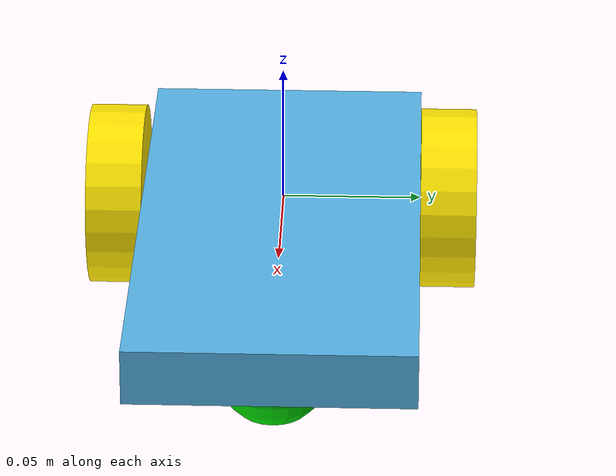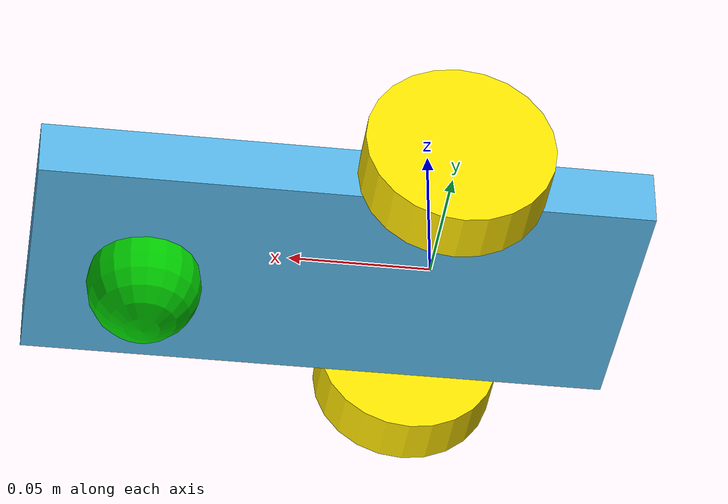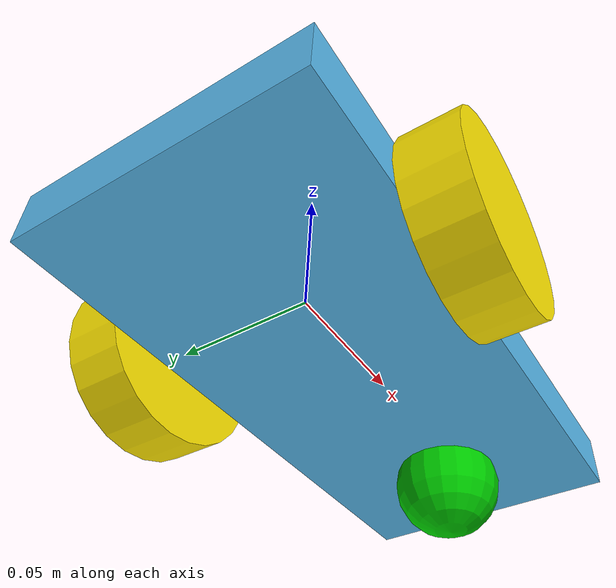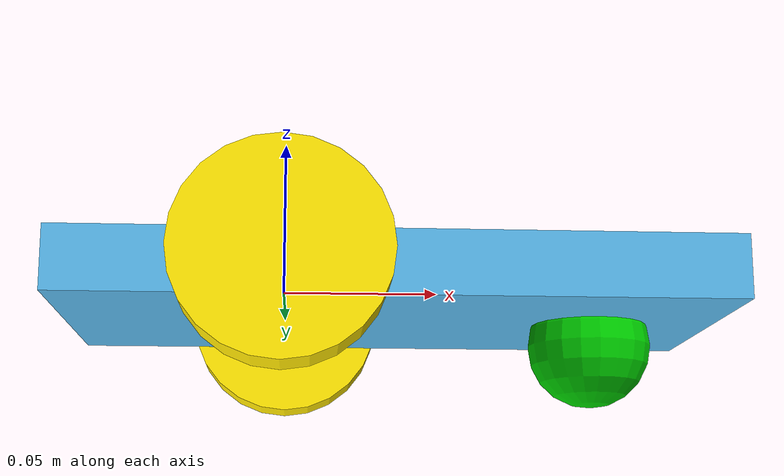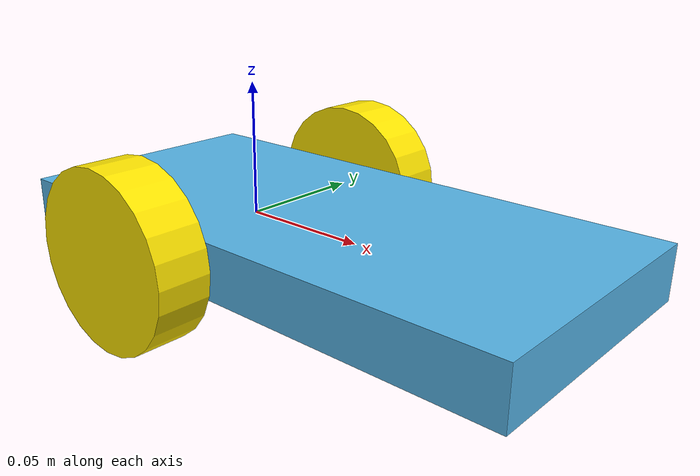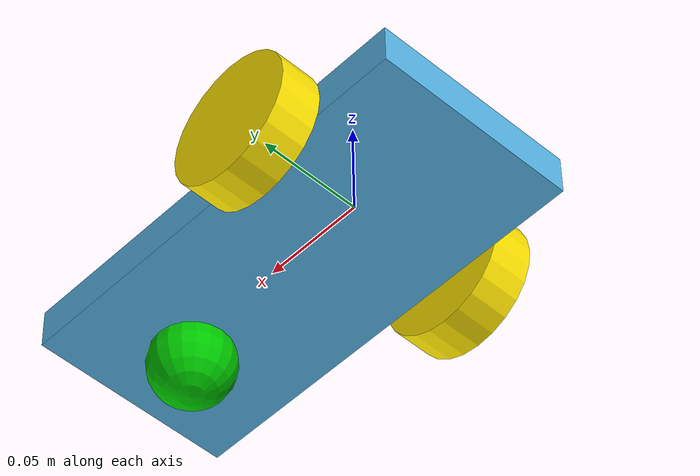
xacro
<?xml version="1.0" ?>

<robot name="mobile_robot" xmlns:xacro="http://ros.org/wiki/xacro">

<!-- Body geometry -->
<xacro:property name="body_link_x_dim" value="0.10" />
<xacro:property name="body_link_y_dim" value="0.21" />
<xacro:property name="body_link_z_dim" value="0.02" />

<!-- Wheel geometry -->
<xacro:property name="wheel_link_radius" value="0.0325" />
<xacro:property name="wheel_link_length" value="0.02" />
<xacro:property name="wheel_link_x_location" value="0.06" />

<!-- Sphere geometry -->
<xacro:property name="sphere_radius" value="0.02" />
<xacro:property name="sphere_joint_y" value="-0.1" />
<xacro:property name="z_sphere" value="-0.017" />

<!-- Constants -->
<xacro:property name="pi_const" value="3.1415926535898" />
<xacro:property name="half_pi_const" value="1.5707963" />

<!-- Material colors -->
<material name="white">
	<color rgba="1.0 1.0 1.0 1.0"/>
</material>

<material name="yellow">
	<color rgba="1 0.9 0.0 1.0"/>
</material>

<material name="green">
	<color rgba="0.0 0.8 0.0 1.0"/>
</material>

<material name="red">
	<color rgba="0.8 0.0 0.0 1.0"/>
</material>

<link name="base_frame"/>

<joint name="base_joint" type="fixed">
	<origin xyz="0 0 0" rpy="0 0 ${half_pi_const}" />
	<parent link="base_frame"/>
	<child link="base_link" />
</joint>

<link name="base_link">
 	<visual>
		<geometry>
			<box size="${body_link_x_dim} ${body_link_y_dim} ${body_link_z_dim}" />
		</geometry>
	 <origin xyz="0 -0.035 0" rpy="0 0 0"/>
      </visual>
</link>

<joint name="left_wheel_joint" type="fixed">
	<origin xyz="-${wheel_link_x_location} 0 0" rpy="0 0 0"/>
	<parent link="base_link"/>
	<child link="left_wheel_link"/>
	<axis xyz="1 0 0"/>
	<limit effort="100" velocity="100"/>
	<joint_properties damping="0.0" friction="0.0"/>
</joint>

<link name="left_wheel_link">
	<visual>
		<origin xyz="0 0 0" rpy="0 ${half_pi_const} 0" />
		<geometry>
			<cylinder radius="${wheel_link_radius}" length = "${wheel_link_length}"/>
		</geometry>
     	 	<material name ="yellow" />
	</visual>
</link>

<link name="right_wheel_link">
	<visual>
		<origin xyz="0 0 0" rpy="0 ${half_pi_const} 0" />
		<geometry>
			<cylinder radius="${wheel_link_radius}" length = "${wheel_link_length}"/>
		</geometry>
		<material name ="yellow" />
	</visual>
</link>

<joint name="right_wheel_joint" type="fixed">
	<origin xyz="${wheel_link_x_location} 0 0" rpy="0 0 0"/>
	<parent link="base_link"/>
	<child link="right_wheel_link"/>
	<axis xyz="1 0 0"/>
</joint>

<joint name="robot_caster_back_joint" type="fixed">
	<parent link="base_link"/>
	<child link="robot_caster_back_link"/>
	<origin xyz="0 ${sphere_joint_y} 0" rpy="0 0 0"/>
</joint>

<link name="robot_caster_back_link">
	<origin xyz="0 0 0"/>
	<visual>
		<origin xyz="0 0 ${z_sphere}" rpy="0 0 0" />
		<geometry>
			<sphere radius="${sphere_radius}" />
		</geometry>
		<material name ="green" />
	</visual>
</link>

</robot>
